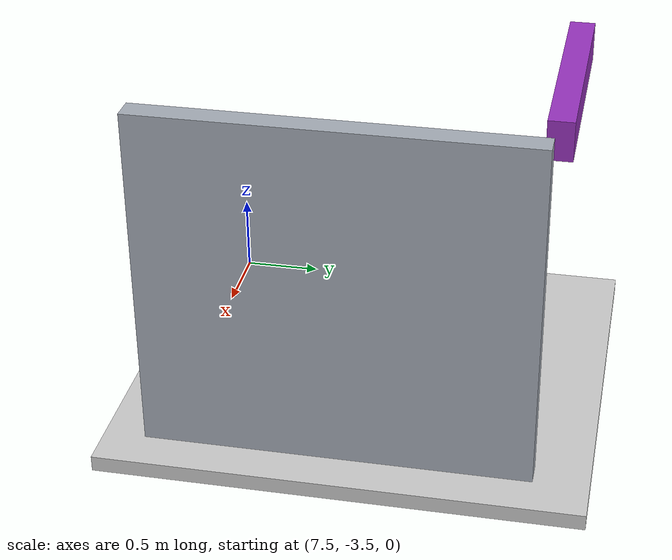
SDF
<sdf version="1.9">
 <world name="default">
  <model name="ground_plane">
   <static>true</static>
   <pose>5.15 0 -0.05 0 0 0</pose>
   <link name="body">
    <collision name="collision"><geometry><box><size>14.3 12 0.1</size></box></geometry></collision>
    <visual name="visual">
     <geometry><box><size>14.3 12 0.1</size></box></geometry>
     <material><ambient>0.8 0.8 0.8 1</ambient><diffuse>0.8 0.8 0.8 1</diffuse></material>
    </visual>
   </link>
  </model>
  <model name="room_-1_2_1">
   <static>true</static>
   <pose>9.600000000000001 -2.4 1.1 0 0 0</pose>
   <link name="body">
    <collision name="collision"><geometry><box><size>0.15 2.4 2.2</size></box></geometry></collision>
    <visual name="visual">
     <geometry><box><size>0.15 2.4 2.2</size></box></geometry>
     <material><ambient>0.65 0.68 0.72 1</ambient><diffuse>0.65 0.68 0.72 1</diffuse></material>
    </visual>
   </link>
  </model>
  <model name="r3geo_base_r004_right_2_lintel">
   <static>true</static>
   <pose>8.3 -1.2 1.95 0 0 0</pose>
   <link name="body">
    <collision name="collision"><geometry><box><size>1.5 0.16 0.25</size></box></geometry></collision>
    <visual name="visual">
     <geometry><box><size>1.5 0.16 0.25</size></box></geometry>
     <material><ambient>0.6 0.2 0.75 1</ambient><diffuse>0.6 0.2 0.75 1</diffuse></material>
    </visual>
   </link>
  </model>
  <model name="r3geo_base_r004_right_2_entrance_sign">
   <static>true</static>
   <pose>8.83 -1.5 1.05 0 0 0</pose>
   <link name="body">
    <visual name="visual">
     <geometry><box><size>0.32 0.08 0.32</size></box></geometry>
     <material><ambient>0.16 0.8 0.61 1</ambient><diffuse>0.16 0.8 0.61 1</diffuse></material>
    </visual>
   </link>
  </model>
 </world>
</sdf>
